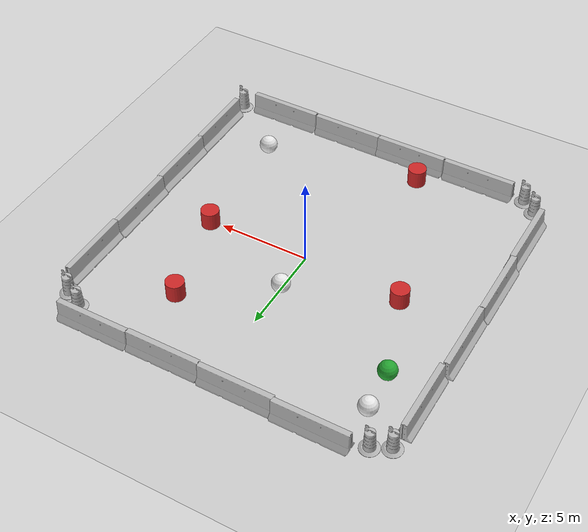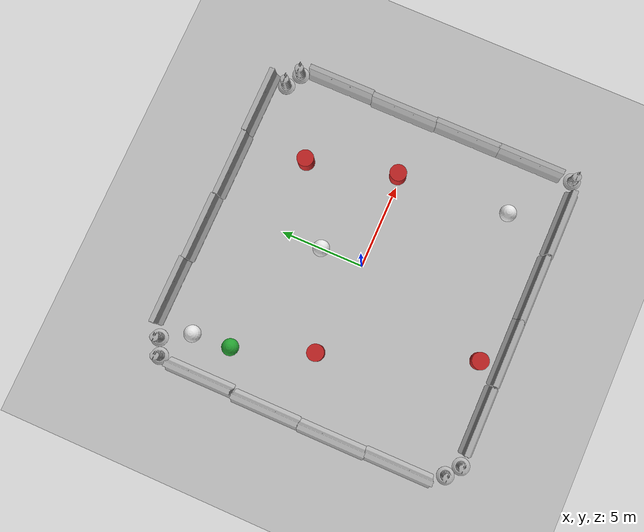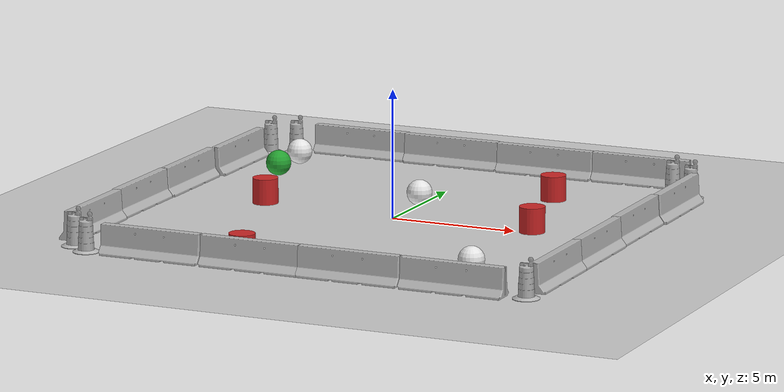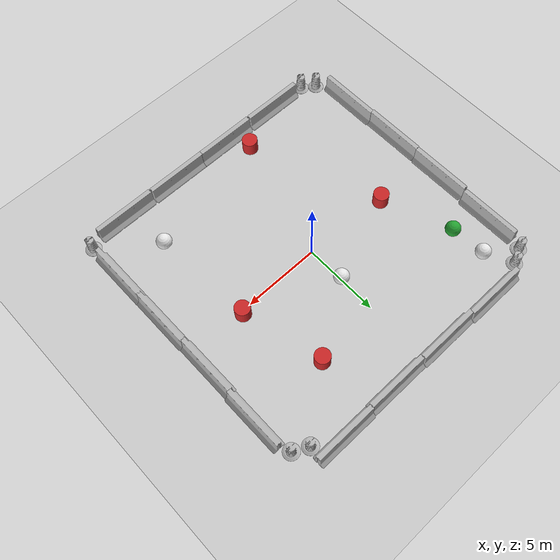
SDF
<sdf version="1.6">
 <world name="default">
  <light name="sun" type="directional">
   <pose>0 0 10 0 -0 0</pose>
   <diffuse>0.8 0.8 0.8 1</diffuse>
   <specular>0.2 0.2 0.2 1</specular>
   <attenuation>
    <range>1000</range>
    <constant>0.9</constant>
    <linear>0.01</linear>
    <quadratic>0.001</quadratic>
   </attenuation>
   <direction>-0.5 0.1 -0.9</direction>
  </light>
  <model name="ground_plane">
   <static>1</static>
   <link name="link">
    <collision name="collision">
     <geometry><plane><normal>0 0 1</normal><size>100 100</size></plane></geometry>
     <surface><friction><ode><mu>100</mu><mu2>50</mu2></ode></friction></surface>
    </collision>
    <visual name="visual">
     <cast_shadows>0</cast_shadows>
     <geometry><plane><normal>0 0 1</normal><size>100 100</size></plane></geometry>
     <material>
      <script><uri>file://media/materials/scripts/gazebo.material</uri><name>Gazebo/Grey</name></script>
     </material>
    </visual>
   </link>
  </model>
  <gravity>0 0 -9.8</gravity>
  <magnetic_field>6e-06 2.3e-05 -4.2e-05</magnetic_field>
  <atmosphere type="adiabatic"/>
  <physics name="default_physics" default="0" type="ode">
   <max_step_size>0.001</max_step_size>
   <real_time_factor>1</real_time_factor>
   <real_time_update_rate>1000</real_time_update_rate>
  </physics>
  <scene><ambient>0.4 0.4 0.4 1</ambient><background>0.7 0.7 0.7 1</background><shadows>1</shadows></scene>
  <spherical_coordinates>
   <surface_model>EARTH_WGS84</surface_model>
   <latitude_deg>0</latitude_deg>
   <longitude_deg>0</longitude_deg>
   <elevation>0</elevation>
   <heading_deg>0</heading_deg>
  </spherical_coordinates>
  <model name="jersey_barrier">
   <static>1</static>
   <link name="link">
    <visual name="visual">
     <geometry>
      <mesh><uri>model://jersey_barrier/meshes/jersey_barrier.dae</uri><scale>1 1 1</scale></mesh>
     </geometry>
    </visual>
    <collision name="upright">
     <pose>0 0 0.5715 0 -0 0</pose>
     <geometry><box><size>4.06542 0.3063 1.143</size></box></geometry>
    </collision>
    <collision name="base">
     <pose>0 0 0.032258 0 -0 0</pose>
     <geometry><box><size>4.06542 0.8107 0.064516</size></box></geometry>
    </collision>
    <collision name="base2">
     <pose>0 0 0.1 0 -0 0</pose>
     <geometry><box><size>4.06542 0.65 0.1</size></box></geometry>
    </collision>
    <collision name="base3">
     <pose>0 0 0.2 0 -0 0</pose>
     <geometry><box><size>4.06542 0.5 0.1</size></box></geometry>
    </collision>
    <collision name="left-angle">
     <pose>0 -0.224 0.2401 0.9 -0 0</pose>
     <geometry><box><size>4.06542 0.5 0.064516</size></box></geometry>
    </collision>
    <collision name="right-angle">
     <pose>0 0.224 0.2401 -0.9 0 0</pose>
     <geometry><box><size>4.06542 0.5 0.064516</size></box></geometry>
    </collision>
   </link>
   <pose>-5.65677 9.4608 0 0 -0 0</pose>
  </model>
  <model name="jersey_barrier_clone">
   <static>1</static>
   <link name="link">
    <visual name="visual">
     <geometry>
      <mesh><uri>model://jersey_barrier/meshes/jersey_barrier.dae</uri><scale>1 1 1</scale></mesh>
     </geometry>
    </visual>
    <collision name="upright">
     <pose>0 0 0.5715 0 -0 0</pose>
     <geometry><box><size>4.06542 0.3063 1.143</size></box></geometry>
    </collision>
    <collision name="base">
     <pose>0 0 0.032258 0 -0 0</pose>
     <geometry><box><size>4.06542 0.8107 0.064516</size></box></geometry>
    </collision>
    <collision name="base2">
     <pose>0 0 0.1 0 -0 0</pose>
     <geometry><box><size>4.06542 0.65 0.1</size></box></geometry>
    </collision>
    <collision name="base3">
     <pose>0 0 0.2 0 -0 0</pose>
     <geometry><box><size>4.06542 0.5 0.1</size></box></geometry>
    </collision>
    <collision name="left-angle">
     <pose>0 -0.224 0.2401 0.9 -0 0</pose>
     <geometry><box><size>4.06542 0.5 0.064516</size></box></geometry>
    </collision>
    <collision name="right-angle">
     <pose>0 0.224 0.2401 -0.9 0 0</pose>
     <geometry><box><size>4.06542 0.5 0.064516</size></box></geometry>
    </collision>
   </link>
   <pose>-1.65987 9.36075 0 0 -0 0</pose>
  </model>
  <model name="jersey_barrier_clone_0">
   <static>1</static>
   <link name="link">
    <visual name="visual">
     <geometry>
      <mesh><uri>model://jersey_barrier/meshes/jersey_barrier.dae</uri><scale>1 1 1</scale></mesh>
     </geometry>
    </visual>
    <collision name="upright">
     <pose>0 0 0.5715 0 -0 0</pose>
     <geometry><box><size>4.06542 0.3063 1.143</size></box></geometry>
    </collision>
    <collision name="base">
     <pose>0 0 0.032258 0 -0 0</pose>
     <geometry><box><size>4.06542 0.8107 0.064516</size></box></geometry>
    </collision>
    <collision name="base2">
     <pose>0 0 0.1 0 -0 0</pose>
     <geometry><box><size>4.06542 0.65 0.1</size></box></geometry>
    </collision>
    <collision name="base3">
     <pose>0 0 0.2 0 -0 0</pose>
     <geometry><box><size>4.06542 0.5 0.1</size></box></geometry>
    </collision>
    <collision name="left-angle">
     <pose>0 -0.224 0.2401 0.9 -0 0</pose>
     <geometry><box><size>4.06542 0.5 0.064516</size></box></geometry>
    </collision>
    <collision name="right-angle">
     <pose>0 0.224 0.2401 -0.9 0 0</pose>
     <geometry><box><size>4.06542 0.5 0.064516</size></box></geometry>
    </collision>
   </link>
   <pose>2.39773 9.29085 0 0 -0 0</pose>
  </model>
  <model name="jersey_barrier_clone_1">
   <static>1</static>
   <link name="link">
    <visual name="visual">
     <geometry>
      <mesh><uri>model://jersey_barrier/meshes/jersey_barrier.dae</uri><scale>1 1 1</scale></mesh>
     </geometry>
    </visual>
    <collision name="upright">
     <pose>0 0 0.5715 0 -0 0</pose>
     <geometry><box><size>4.06542 0.3063 1.143</size></box></geometry>
    </collision>
    <collision name="base">
     <pose>0 0 0.032258 0 -0 0</pose>
     <geometry><box><size>4.06542 0.8107 0.064516</size></box></geometry>
    </collision>
    <collision name="base2">
     <pose>0 0 0.1 0 -0 0</pose>
     <geometry><box><size>4.06542 0.65 0.1</size></box></geometry>
    </collision>
    <collision name="base3">
     <pose>0 0 0.2 0 -0 0</pose>
     <geometry><box><size>4.06542 0.5 0.1</size></box></geometry>
    </collision>
    <collision name="left-angle">
     <pose>0 -0.224 0.2401 0.9 -0 0</pose>
     <geometry><box><size>4.06542 0.5 0.064516</size></box></geometry>
    </collision>
    <collision name="right-angle">
     <pose>0 0.224 0.2401 -0.9 0 0</pose>
     <geometry><box><size>4.06542 0.5 0.064516</size></box></geometry>
    </collision>
   </link>
   <pose>6.45464 9.33993 0 0 -0 0</pose>
  </model>
  <model name="jersey_barrier_clone_3">
   <static>1</static>
   <link name="link">
    <visual name="visual">
     <geometry>
      <mesh><uri>model://jersey_barrier/meshes/jersey_barrier.dae</uri><scale>1 1 1</scale></mesh>
     </geometry>
    </visual>
    <collision name="upright">
     <pose>0 0 0.5715 0 -0 0</pose>
     <geometry><box><size>4.06542 0.3063 1.143</size></box></geometry>
    </collision>
    <collision name="base">
     <pose>0 0 0.032258 0 -0 0</pose>
     <geometry><box><size>4.06542 0.8107 0.064516</size></box></geometry>
    </collision>
    <collision name="base2">
     <pose>0 0 0.1 0 -0 0</pose>
     <geometry><box><size>4.06542 0.65 0.1</size></box></geometry>
    </collision>
    <collision name="base3">
     <pose>0 0 0.2 0 -0 0</pose>
     <geometry><box><size>4.06542 0.5 0.1</size></box></geometry>
    </collision>
    <collision name="left-angle">
     <pose>0 -0.224 0.2401 0.9 -0 0</pose>
     <geometry><box><size>4.06542 0.5 0.064516</size></box></geometry>
    </collision>
    <collision name="right-angle">
     <pose>0 0.224 0.2401 -0.9 0 0</pose>
     <geometry><box><size>4.06542 0.5 0.064516</size></box></geometry>
    </collision>
   </link>
   <pose>9.44656 5.35522 0 0 0 -1.56865</pose>
  </model>
  <model name="jersey_barrier_clone_3_clone">
   <static>1</static>
   <link name="link">
    <visual name="visual">
     <geometry>
      <mesh><uri>model://jersey_barrier/meshes/jersey_barrier.dae</uri><scale>1 1 1</scale></mesh>
     </geometry>
    </visual>
    <collision name="upright">
     <pose>0 0 0.5715 0 -0 0</pose>
     <geometry><box><size>4.06542 0.3063 1.143</size></box></geometry>
    </collision>
    <collision name="base">
     <pose>0 0 0.032258 0 -0 0</pose>
     <geometry><box><size>4.06542 0.8107 0.064516</size></box></geometry>
    </collision>
    <collision name="base2">
     <pose>0 0 0.1 0 -0 0</pose>
     <geometry><box><size>4.06542 0.65 0.1</size></box></geometry>
    </collision>
    <collision name="base3">
     <pose>0 0 0.2 0 -0 0</pose>
     <geometry><box><size>4.06542 0.5 0.1</size></box></geometry>
    </collision>
    <collision name="left-angle">
     <pose>0 -0.224 0.2401 0.9 -0 0</pose>
     <geometry><box><size>4.06542 0.5 0.064516</size></box></geometry>
    </collision>
    <collision name="right-angle">
     <pose>0 0.224 0.2401 -0.9 0 0</pose>
     <geometry><box><size>4.06542 0.5 0.064516</size></box></geometry>
    </collision>
   </link>
   <pose>9.3727 1.33119 0 0 0 -1.56865</pose>
  </model>
  <model name="jersey_barrier_clone_3_clone_0">
   <static>1</static>
   <link name="link">
    <visual name="visual">
     <geometry>
      <mesh><uri>model://jersey_barrier/meshes/jersey_barrier.dae</uri><scale>1 1 1</scale></mesh>
     </geometry>
    </visual>
    <collision name="upright">
     <pose>0 0 0.5715 0 -0 0</pose>
     <geometry><box><size>4.06542 0.3063 1.143</size></box></geometry>
    </collision>
    <collision name="base">
     <pose>0 0 0.032258 0 -0 0</pose>
     <geometry><box><size>4.06542 0.8107 0.064516</size></box></geometry>
    </collision>
    <collision name="base2">
     <pose>0 0 0.1 0 -0 0</pose>
     <geometry><box><size>4.06542 0.65 0.1</size></box></geometry>
    </collision>
    <collision name="base3">
     <pose>0 0 0.2 0 -0 0</pose>
     <geometry><box><size>4.06542 0.5 0.1</size></box></geometry>
    </collision>
    <collision name="left-angle">
     <pose>0 -0.224 0.2401 0.9 -0 0</pose>
     <geometry><box><size>4.06542 0.5 0.064516</size></box></geometry>
    </collision>
    <collision name="right-angle">
     <pose>0 0.224 0.2401 -0.9 0 0</pose>
     <geometry><box><size>4.06542 0.5 0.064516</size></box></geometry>
    </collision>
   </link>
   <pose>9.4315 -2.6268 0 0 0 -1.56865</pose>
  </model>
  <model name="jersey_barrier_clone_3_clone_1">
   <static>1</static>
   <link name="link">
    <visual name="visual">
     <geometry>
      <mesh><uri>model://jersey_barrier/meshes/jersey_barrier.dae</uri><scale>1 1 1</scale></mesh>
     </geometry>
    </visual>
    <collision name="upright">
     <pose>0 0 0.5715 0 -0 0</pose>
     <geometry><box><size>4.06542 0.3063 1.143</size></box></geometry>
    </collision>
    <collision name="base">
     <pose>0 0 0.032258 0 -0 0</pose>
     <geometry><box><size>4.06542 0.8107 0.064516</size></box></geometry>
    </collision>
    <collision name="base2">
     <pose>0 0 0.1 0 -0 0</pose>
     <geometry><box><size>4.06542 0.65 0.1</size></box></geometry>
    </collision>
    <collision name="base3">
     <pose>0 0 0.2 0 -0 0</pose>
     <geometry><box><size>4.06542 0.5 0.1</size></box></geometry>
    </collision>
    <collision name="left-angle">
     <pose>0 -0.224 0.2401 0.9 -0 0</pose>
     <geometry><box><size>4.06542 0.5 0.064516</size></box></geometry>
    </collision>
    <collision name="right-angle">
     <pose>0 0.224 0.2401 -0.9 0 0</pose>
     <geometry><box><size>4.06542 0.5 0.064516</size></box></geometry>
    </collision>
   </link>
   <pose>9.44969 -6.53485 0 0 0 -1.56865</pose>
  </model>
  <model name="jersey_barrier_clone_2_clone">
   <static>1</static>
   <link name="link">
    <visual name="visual">
     <geometry>
      <mesh><uri>model://jersey_barrier/meshes/jersey_barrier.dae</uri><scale>1 1 1</scale></mesh>
     </geometry>
    </visual>
    <collision name="upright">
     <pose>0 0 0.5715 0 -0 0</pose>
     <geometry><box><size>4.06542 0.3063 1.143</size></box></geometry>
    </collision>
    <collision name="base">
     <pose>0 0 0.032258 0 -0 0</pose>
     <geometry><box><size>4.06542 0.8107 0.064516</size></box></geometry>
    </collision>
    <collision name="base2">
     <pose>0 0 0.1 0 -0 0</pose>
     <geometry><box><size>4.06542 0.65 0.1</size></box></geometry>
    </collision>
    <collision name="base3">
     <pose>0 0 0.2 0 -0 0</pose>
     <geometry><box><size>4.06542 0.5 0.1</size></box></geometry>
    </collision>
    <collision name="left-angle">
     <pose>0 -0.224 0.2401 0.9 -0 0</pose>
     <geometry><box><size>4.06542 0.5 0.064516</size></box></geometry>
    </collision>
    <collision name="right-angle">
     <pose>0 0.224 0.2401 -0.9 0 0</pose>
     <geometry><box><size>4.06542 0.5 0.064516</size></box></geometry>
    </collision>
   </link>
   <pose>6.70657 -9.54347 0 0 -0 0</pose>
  </model>
  <model name="jersey_barrier_clone_2_clone_0">
   <static>1</static>
   <link name="link">
    <visual name="visual">
     <geometry>
      <mesh><uri>model://jersey_barrier/meshes/jersey_barrier.dae</uri><scale>1 1 1</scale></mesh>
     </geometry>
    </visual>
    <collision name="upright">
     <pose>0 0 0.5715 0 -0 0</pose>
     <geometry><box><size>4.06542 0.3063 1.143</size></box></geometry>
    </collision>
    <collision name="base">
     <pose>0 0 0.032258 0 -0 0</pose>
     <geometry><box><size>4.06542 0.8107 0.064516</size></box></geometry>
    </collision>
    <collision name="base2">
     <pose>0 0 0.1 0 -0 0</pose>
     <geometry><box><size>4.06542 0.65 0.1</size></box></geometry>
    </collision>
    <collision name="base3">
     <pose>0 0 0.2 0 -0 0</pose>
     <geometry><box><size>4.06542 0.5 0.1</size></box></geometry>
    </collision>
    <collision name="left-angle">
     <pose>0 -0.224 0.2401 0.9 -0 0</pose>
     <geometry><box><size>4.06542 0.5 0.064516</size></box></geometry>
    </collision>
    <collision name="right-angle">
     <pose>0 0.224 0.2401 -0.9 0 0</pose>
     <geometry><box><size>4.06542 0.5 0.064516</size></box></geometry>
    </collision>
   </link>
   <pose>2.59616 -9.50928 0 0 -0 0</pose>
  </model>
  <model name="jersey_barrier_clone_2_clone_1">
   <static>1</static>
   <link name="link">
    <visual name="visual">
     <geometry>
      <mesh><uri>model://jersey_barrier/meshes/jersey_barrier.dae</uri><scale>1 1 1</scale></mesh>
     </geometry>
    </visual>
    <collision name="upright">
     <pose>0 0 0.5715 0 -0 0</pose>
     <geometry><box><size>4.06542 0.3063 1.143</size></box></geometry>
    </collision>
    <collision name="base">
     <pose>0 0 0.032258 0 -0 0</pose>
     <geometry><box><size>4.06542 0.8107 0.064516</size></box></geometry>
    </collision>
    <collision name="base2">
     <pose>0 0 0.1 0 -0 0</pose>
     <geometry><box><size>4.06542 0.65 0.1</size></box></geometry>
    </collision>
    <collision name="base3">
     <pose>0 0 0.2 0 -0 0</pose>
     <geometry><box><size>4.06542 0.5 0.1</size></box></geometry>
    </collision>
    <collision name="left-angle">
     <pose>0 -0.224 0.2401 0.9 -0 0</pose>
     <geometry><box><size>4.06542 0.5 0.064516</size></box></geometry>
    </collision>
    <collision name="right-angle">
     <pose>0 0.224 0.2401 -0.9 0 0</pose>
     <geometry><box><size>4.06542 0.5 0.064516</size></box></geometry>
    </collision>
   </link>
   <pose>-1.33414 -9.50852 0 0 -0 0</pose>
  </model>
  <model name="jersey_barrier_clone_2_clone_2">
   <static>1</static>
   <link name="link">
    <visual name="visual">
     <geometry>
      <mesh><uri>model://jersey_barrier/meshes/jersey_barrier.dae</uri><scale>1 1 1</scale></mesh>
     </geometry>
    </visual>
    <collision name="upright">
     <pose>0 0 0.5715 0 -0 0</pose>
     <geometry><box><size>4.06542 0.3063 1.143</size></box></geometry>
    </collision>
    <collision name="base">
     <pose>0 0 0.032258 0 -0 0</pose>
     <geometry><box><size>4.06542 0.8107 0.064516</size></box></geometry>
    </collision>
    <collision name="base2">
     <pose>0 0 0.1 0 -0 0</pose>
     <geometry><box><size>4.06542 0.65 0.1</size></box></geometry>
    </collision>
    <collision name="base3">
     <pose>0 0 0.2 0 -0 0</pose>
     <geometry><box><size>4.06542 0.5 0.1</size></box></geometry>
    </collision>
    <collision name="left-angle">
     <pose>0 -0.224 0.2401 0.9 -0 0</pose>
     <geometry><box><size>4.06542 0.5 0.064516</size></box></geometry>
    </collision>
    <collision name="right-angle">
     <pose>0 0.224 0.2401 -0.9 0 0</pose>
     <geometry><box><size>4.06542 0.5 0.064516</size></box></geometry>
    </collision>
   </link>
   <pose>-5.44605 -9.49634 0 0 -0 0</pose>
  </model>
  <model name="jersey_barrier_clone_3_clone_1_clone">
   <static>1</static>
   <link name="link">
    <visual name="visual">
     <geometry>
      <mesh><uri>model://jersey_barrier/meshes/jersey_barrier.dae</uri><scale>1 1 1</scale></mesh>
     </geometry>
    </visual>
    <collision name="upright">
     <pose>0 0 0.5715 0 -0 0</pose>
     <geometry><box><size>4.06542 0.3063 1.143</size></box></geometry>
    </collision>
    <collision name="base">
     <pose>0 0 0.032258 0 -0 0</pose>
     <geometry><box><size>4.06542 0.8107 0.064516</size></box></geometry>
    </collision>
    <collision name="base2">
     <pose>0 0 0.1 0 -0 0</pose>
     <geometry><box><size>4.06542 0.65 0.1</size></box></geometry>
    </collision>
    <collision name="base3">
     <pose>0 0 0.2 0 -0 0</pose>
     <geometry><box><size>4.06542 0.5 0.1</size></box></geometry>
    </collision>
    <collision name="left-angle">
     <pose>0 -0.224 0.2401 0.9 -0 0</pose>
     <geometry><box><size>4.06542 0.5 0.064516</size></box></geometry>
    </collision>
    <collision name="right-angle">
     <pose>0 0.224 0.2401 -0.9 0 0</pose>
     <geometry><box><size>4.06542 0.5 0.064516</size></box></geometry>
    </collision>
   </link>
   <pose>-9.54289 -6.33149 0 0 0 -1.56865</pose>
  </model>
  <model name="jersey_barrier_clone_3_clone_1_clone_0">
   <static>1</static>
   <link name="link">
    <visual name="visual">
     <geometry>
      <mesh><uri>model://jersey_barrier/meshes/jersey_barrier.dae</uri><scale>1 1 1</scale></mesh>
     </geometry>
    </visual>
    <collision name="upright">
     <pose>0 0 0.5715 0 -0 0</pose>
     <geometry><box><size>4.06542 0.3063 1.143</size></box></geometry>
    </collision>
    <collision name="base">
     <pose>0 0 0.032258 0 -0 0</pose>
     <geometry><box><size>4.06542 0.8107 0.064516</size></box></geometry>
    </collision>
    <collision name="base2">
     <pose>0 0 0.1 0 -0 0</pose>
     <geometry><box><size>4.06542 0.65 0.1</size></box></geometry>
    </collision>
    <collision name="base3">
     <pose>0 0 0.2 0 -0 0</pose>
     <geometry><box><size>4.06542 0.5 0.1</size></box></geometry>
    </collision>
    <collision name="left-angle">
     <pose>0 -0.224 0.2401 0.9 -0 0</pose>
     <geometry><box><size>4.06542 0.5 0.064516</size></box></geometry>
    </collision>
    <collision name="right-angle">
     <pose>0 0.224 0.2401 -0.9 0 0</pose>
     <geometry><box><size>4.06542 0.5 0.064516</size></box></geometry>
    </collision>
   </link>
   <pose>-9.6221 -2.35336 0 0 0 -1.56865</pose>
  </model>
  <model name="jersey_barrier_clone_3_clone_1_clone_1">
   <static>1</static>
   <link name="link">
    <visual name="visual">
     <geometry>
      <mesh><uri>model://jersey_barrier/meshes/jersey_barrier.dae</uri><scale>1 1 1</scale></mesh>
     </geometry>
    </visual>
    <collision name="upright">
     <pose>0 0 0.5715 0 -0 0</pose>
     <geometry><box><size>4.06542 0.3063 1.143</size></box></geometry>
    </collision>
    <collision name="base">
     <pose>0 0 0.032258 0 -0 0</pose>
     <geometry><box><size>4.06542 0.8107 0.064516</size></box></geometry>
    </collision>
    <collision name="base2">
     <pose>0 0 0.1 0 -0 0</pose>
     <geometry><box><size>4.06542 0.65 0.1</size></box></geometry>
    </collision>
    <collision name="base3">
     <pose>0 0 0.2 0 -0 0</pose>
     <geometry><box><size>4.06542 0.5 0.1</size></box></geometry>
    </collision>
    <collision name="left-angle">
     <pose>0 -0.224 0.2401 0.9 -0 0</pose>
     <geometry><box><size>4.06542 0.5 0.064516</size></box></geometry>
    </collision>
    <collision name="right-angle">
     <pose>0 0.224 0.2401 -0.9 0 0</pose>
     <geometry><box><size>4.06542 0.5 0.064516</size></box></geometry>
    </collision>
   </link>
   <pose>-9.58952 1.69745 0 0 0 -1.56865</pose>
  </model>
  <model name="jersey_barrier_clone_3_clone_1_clone_2">
   <static>1</static>
   <link name="link">
    <visual name="visual">
     <geometry>
      <mesh><uri>model://jersey_barrier/meshes/jersey_barrier.dae</uri><scale>1 1 1</scale></mesh>
     </geometry>
    </visual>
    <collision name="upright">
     <pose>0 0 0.5715 0 -0 0</pose>
     <geometry><box><size>4.06542 0.3063 1.143</size></box></geometry>
    </collision>
    <collision name="base">
     <pose>0 0 0.032258 0 -0 0</pose>
     <geometry><box><size>4.06542 0.8107 0.064516</size></box></geometry>
    </collision>
    <collision name="base2">
     <pose>0 0 0.1 0 -0 0</pose>
     <geometry><box><size>4.06542 0.65 0.1</size></box></geometry>
    </collision>
    <collision name="base3">
     <pose>0 0 0.2 0 -0 0</pose>
     <geometry><box><size>4.06542 0.5 0.1</size></box></geometry>
    </collision>
    <collision name="left-angle">
     <pose>0 -0.224 0.2401 0.9 -0 0</pose>
     <geometry><box><size>4.06542 0.5 0.064516</size></box></geometry>
    </collision>
    <collision name="right-angle">
     <pose>0 0.224 0.2401 -0.9 0 0</pose>
     <geometry><box><size>4.06542 0.5 0.064516</size></box></geometry>
    </collision>
   </link>
   <pose>-9.44715 5.83721 0 0 0 -1.56865</pose>
  </model>
  <model name="Construction Barrel">
   <link name="link">
    <inertial>
     <pose>0 0 0.4 0 -0 0</pose>
     <mass>500</mass>
     <inertia><ixx>51.2096</ixx><iyy>51.2096</iyy><izz>25</izz><ixy>0</ixy><ixz>0</ixz><iyz>0</iyz></inertia>
    </inertial>
    <collision name="collision">
     <geometry>
      <mesh><uri>model://construction_barrel/meshes/construction_barrel.dae</uri><scale>1 1 1</scale></mesh>
     </geometry>
    </collision>
    <visual name="visual">
     <geometry>
      <mesh><uri>model://construction_barrel/meshes/construction_barrel.dae</uri><scale>1 1 1</scale></mesh>
     </geometry>
    </visual>
   </link>
   <pose>9.0744 7.91054 -1e-06 4e-06 -2e-06 -5.2e-05</pose>
  </model>
  <model name="Construction Barrel_0">
   <link name="link">
    <inertial>
     <pose>0 0 0.4 0 -0 0</pose>
     <mass>500</mass>
     <inertia><ixx>51.2096</ixx><iyy>51.2096</iyy><izz>25</izz><ixy>0</ixy><ixz>0</ixz><iyz>0</iyz></inertia>
    </inertial>
    <collision name="collision">
     <geometry>
      <mesh><uri>model://construction_barrel/meshes/construction_barrel.dae</uri><scale>1 1 1</scale></mesh>
     </geometry>
    </collision>
    <visual name="visual">
     <geometry>
      <mesh><uri>model://construction_barrel/meshes/construction_barrel.dae</uri><scale>1 1 1</scale></mesh>
     </geometry>
    </visual>
   </link>
   <pose>8.12826 8.41635 0 0 0 -5.3e-05</pose>
  </model>
  <model name="Construction Barrel_1">
   <link name="link">
    <inertial>
     <pose>0 0 0.4 0 -0 0</pose>
     <mass>500</mass>
     <inertia><ixx>51.2096</ixx><iyy>51.2096</iyy><izz>25</izz><ixy>0</ixy><ixz>0</ixz><iyz>0</iyz></inertia>
    </inertial>
    <collision name="collision">
     <geometry>
      <mesh><uri>model://construction_barrel/meshes/construction_barrel.dae</uri><scale>1 1 1</scale></mesh>
     </geometry>
    </collision>
    <visual name="visual">
     <geometry>
      <mesh><uri>model://construction_barrel/meshes/construction_barrel.dae</uri><scale>1 1 1</scale></mesh>
     </geometry>
    </visual>
   </link>
   <pose>-9.27261 8.48391 0 0 0 -4.4e-05</pose>
  </model>
  <model name="Construction Barrel_2">
   <link name="link">
    <inertial>
     <pose>0 0 0.4 0 -0 0</pose>
     <mass>500</mass>
     <inertia><ixx>51.2096</ixx><iyy>51.2096</iyy><izz>25</izz><ixy>0</ixy><ixz>0</ixz><iyz>0</iyz></inertia>
    </inertial>
    <collision name="collision">
     <geometry>
      <mesh><uri>model://construction_barrel/meshes/construction_barrel.dae</uri><scale>1 1 1</scale></mesh>
     </geometry>
    </collision>
    <visual name="visual">
     <geometry>
      <mesh><uri>model://construction_barrel/meshes/construction_barrel.dae</uri><scale>1 1 1</scale></mesh>
     </geometry>
    </visual>
   </link>
   <pose>-8.34364 8.93853 -1e-06 4e-06 -2e-06 -5.1e-05</pose>
  </model>
  <model name="Construction Barrel_3">
   <link name="link">
    <inertial>
     <pose>0 0 0.4 0 -0 0</pose>
     <mass>500</mass>
     <inertia><ixx>51.2096</ixx><iyy>51.2096</iyy><izz>25</izz><ixy>0</ixy><ixz>0</ixz><iyz>0</iyz></inertia>
    </inertial>
    <collision name="collision">
     <geometry>
      <mesh><uri>model://construction_barrel/meshes/construction_barrel.dae</uri><scale>1 1 1</scale></mesh>
     </geometry>
    </collision>
    <visual name="visual">
     <geometry>
      <mesh><uri>model://construction_barrel/meshes/construction_barrel.dae</uri><scale>1 1 1</scale></mesh>
     </geometry>
    </visual>
   </link>
   <pose>9.45362 -9.29433 0 0 0 -5e-05</pose>
  </model>
  <model name="Construction Barrel_4">
   <link name="link">
    <inertial>
     <pose>0 0 0.4 0 -0 0</pose>
     <mass>500</mass>
     <inertia><ixx>51.2096</ixx><iyy>51.2096</iyy><izz>25</izz><ixy>0</ixy><ixz>0</ixz><iyz>0</iyz></inertia>
    </inertial>
    <collision name="collision">
     <geometry>
      <mesh><uri>model://construction_barrel/meshes/construction_barrel.dae</uri><scale>1 1 1</scale></mesh>
     </geometry>
    </collision>
    <visual name="visual">
     <geometry>
      <mesh><uri>model://construction_barrel/meshes/construction_barrel.dae</uri><scale>1 1 1</scale></mesh>
     </geometry>
    </visual>
   </link>
   <pose>-8.13321 -9.57176 -4e-06 -5e-06 -7e-06 -0.0005</pose>
  </model>
  <model name="Construction Barrel_5">
   <link name="link">
    <inertial>
     <pose>0 0 0.4 0 -0 0</pose>
     <mass>500</mass>
     <inertia><ixx>51.2096</ixx><iyy>51.2096</iyy><izz>25</izz><ixy>0</ixy><ixz>0</ixz><iyz>0</iyz></inertia>
    </inertial>
    <collision name="collision">
     <geometry>
      <mesh><uri>model://construction_barrel/meshes/construction_barrel.dae</uri><scale>1 1 1</scale></mesh>
     </geometry>
    </collision>
    <visual name="visual">
     <geometry>
      <mesh><uri>model://construction_barrel/meshes/construction_barrel.dae</uri><scale>1 1 1</scale></mesh>
     </geometry>
    </visual>
   </link>
   <pose>-8.93849 -8.96007 -2e-06 8e-06 -4e-06 -0.000383</pose>
  </model>
  <model name="ballA">
   <link name="block">
    <inertial>
     <mass>0.1</mass>
     <inertia><ixx>1.5e-05</ixx><ixy>0</ixy><ixz>0</ixz><iyy>1.5e-05</iyy><iyz>0</iyz><izz>1.5e-05</izz></inertia>
    </inertial>
    <collision name="block_collision">
     <geometry><sphere><radius>0.5</radius></sphere></geometry>
     <surface>
      <contact><ode><kp>100</kp><kd>100</kd><min_depth>0.001</min_depth></ode></contact>
      <friction><ode><mu>100000</mu><mu2>100000</mu2></ode></friction>
     </surface>
    </collision>
    <visual name="block_visual">
     <geometry><sphere><radius>0.5</radius></sphere></geometry>
     <material>
      <script><name>Gazebo/White</name><uri>file://media/materials/scripts/gazebo.material</uri></script>
     </material>
    </visual>
   </link>
   <pose>6.11384 -6.53108 0.489249 0 -0 0</pose>
  </model>
  <model name="ballB">
   <link name="block">
    <inertial>
     <mass>0.1</mass>
     <inertia><ixx>1.5e-05</ixx><ixy>0</ixy><ixz>0</ixz><iyy>1.5e-05</iyy><iyz>0</iyz><izz>1.5e-05</izz></inertia>
    </inertial>
    <collision name="block_collision">
     <geometry><sphere><radius>0.5</radius></sphere></geometry>
     <surface>
      <contact><ode><kp>100</kp><kd>100</kd><min_depth>0.001</min_depth></ode></contact>
      <friction><ode><mu>100000</mu><mu2>100000</mu2></ode></friction>
     </surface>
    </collision>
    <visual name="block_visual">
     <geometry><sphere><radius>0.5</radius></sphere></geometry>
     <material>
      <script><name>Gazebo/White</name><uri>file://media/materials/scripts/gazebo.material</uri></script>
     </material>
    </visual>
   </link>
   <pose>-7.37124 7.20856 0.489249 0 -0 0</pose>
  </model>
  <model name="CILC">
   <link name="block">
    <inertial>
     <mass>0.1</mass>
     <inertia>
      <ixx>0.0395417</ixx>
      <ixy>0</ixy>
      <ixz>0</ixz>
      <iyy>0.106208</iyy>
      <iyz>0</iyz>
      <izz>0.106208</izz>
     </inertia>
    </inertial>
    <collision name="block_collision">
     <geometry><cylinder><length>1</length><radius>0.5</radius></cylinder></geometry>
     <surface>
      <contact><ode><kp>1e+08</kp><kd>100</kd><min_depth>0.001</min_depth></ode></contact>
      <friction><ode><mu>100000</mu><mu2>100000</mu2></ode></friction>
     </surface>
    </collision>
    <visual name="block_visual">
     <geometry><cylinder><length>1</length><radius>0.5</radius></cylinder></geometry>
     <material>
      <script><name>Gazebo/Red</name><uri>file://media/materials/scripts/gazebo.material</uri></script>
     </material>
    </visual>
   </link>
   <pose>4.34715 5.42367 0.499059 6.5e-05 -0.000118 0</pose>
  </model>
  <model name="CILD">
   <link name="block">
    <inertial>
     <mass>0.1</mass>
     <inertia>
      <ixx>0.0395417</ixx>
      <ixy>0</ixy>
      <ixz>0</ixz>
      <iyy>0.106208</iyy>
      <iyz>0</iyz>
      <izz>0.106208</izz>
     </inertia>
    </inertial>
    <collision name="block_collision">
     <geometry><cylinder><length>1</length><radius>0.5</radius></cylinder></geometry>
     <surface>
      <contact><ode><kp>1e+08</kp><kd>100</kd><min_depth>0.001</min_depth></ode></contact>
      <friction><ode><mu>100000</mu><mu2>100000</mu2></ode></friction>
     </surface>
    </collision>
    <visual name="block_visual">
     <geometry><cylinder><length>1</length><radius>0.5</radius></cylinder></geometry>
     <material>
      <script><name>Gazebo/Red</name><uri>file://media/materials/scripts/gazebo.material</uri></script>
     </material>
    </visual>
   </link>
   <pose>5.6776 0.177009 0.49998 4e-05 2.2e-05 -7e-06</pose>
  </model>
  <model name="CILE">
   <link name="block">
    <inertial>
     <mass>0.1</mass>
     <inertia>
      <ixx>0.0395417</ixx>
      <ixy>0</ixy>
      <ixz>0</ixz>
      <iyy>0.106208</iyy>
      <iyz>0</iyz>
      <izz>0.106208</izz>
     </inertia>
    </inertial>
    <collision name="block_collision">
     <geometry><cylinder><length>1</length><radius>0.5</radius></cylinder></geometry>
     <surface>
      <contact><ode><kp>1e+08</kp><kd>100</kd><min_depth>0.001</min_depth></ode></contact>
      <friction><ode><mu>100000</mu><mu2>100000</mu2></ode></friction>
     </surface>
    </collision>
    <visual name="block_visual">
     <geometry><cylinder><length>1</length><radius>0.5</radius></cylinder></geometry>
     <material>
      <script><name>Gazebo/Red</name><uri>file://media/materials/scripts/gazebo.material</uri></script>
     </material>
    </visual>
   </link>
   <pose>-2.35372 -8.23265 0.499054 5.2e-05 -0.000109 -0</pose>
  </model>
  <model name="ballF">
   <link name="block">
    <inertial>
     <mass>0.1</mass>
     <inertia><ixx>1.5e-05</ixx><ixy>0</ixy><ixz>0</ixz><iyy>1.5e-05</iyy><iyz>0</iyz><izz>1.5e-05</izz></inertia>
    </inertial>
    <collision name="block_collision">
     <geometry><sphere><radius>0.5</radius></sphere></geometry>
     <surface>
      <contact><ode><kp>100</kp><kd>100</kd><min_depth>0.001</min_depth></ode></contact>
      <friction><ode><mu>100000</mu><mu2>100000</mu2></ode></friction>
     </surface>
    </collision>
    <visual name="block_visual">
     <geometry><sphere><radius>0.5</radius></sphere></geometry>
     <material>
      <script><name>Gazebo/White</name><uri>file://media/materials/scripts/gazebo.material</uri></script>
     </material>
    </visual>
   </link>
   <pose>-0.025563 2.522 0.489249 0 -0 0</pose>
  </model>
  <model name="CILG">
   <link name="block">
    <inertial>
     <mass>0.1</mass>
     <inertia>
      <ixx>0.0395417</ixx>
      <ixy>0</ixy>
      <ixz>0</ixz>
      <iyy>0.106208</iyy>
      <iyz>0</iyz>
      <izz>0.106208</izz>
     </inertia>
    </inertial>
    <collision name="block_collision">
     <geometry><cylinder><length>1</length><radius>0.5</radius></cylinder></geometry>
     <surface>
      <contact><ode><kp>1e+08</kp><kd>100</kd><min_depth>0.001</min_depth></ode></contact>
      <friction><ode><mu>100000</mu><mu2>100000</mu2></ode></friction>
     </surface>
    </collision>
    <visual name="block_visual">
     <geometry><cylinder><length>1</length><radius>0.5</radius></cylinder></geometry>
     <material>
      <script><name>Gazebo/Red</name><uri>file://media/materials/scripts/gazebo.material</uri></script>
     </material>
    </visual>
   </link>
   <pose>-5.58059 0.379677 0.499035 3.1e-05 -6.9e-05 0</pose>
  </model>
  <model name="robot5">
   <link name="block">
    <inertial>
     <mass>0.1</mass>
     <inertia><ixx>1.5e-05</ixx><ixy>0</ixy><ixz>0</ixz><iyy>1.5e-05</iyy><iyz>0</iyz><izz>1.5e-05</izz></inertia>
    </inertial>
    <collision name="block_collision">
     <geometry><sphere><radius>0.5</radius></sphere></geometry>
     <surface>
      <contact><ode><kp>1e+08</kp><kd>100</kd><min_depth>0.001</min_depth></ode></contact>
      <friction><ode><mu>100000</mu><mu2>100000</mu2></ode></friction>
     </surface>
    </collision>
    <visual name="block_visual">
     <geometry><sphere><radius>0.5</radius></sphere></geometry>
     <material>
      <script><name>Gazebo/Green</name><uri>file://media/materials/scripts/gazebo.material</uri></script>
     </material>
    </visual>
   </link>
   <pose>-7.21045 4.93021 0.499 0 -0 0</pose>
  </model>
 </world>
</sdf>
